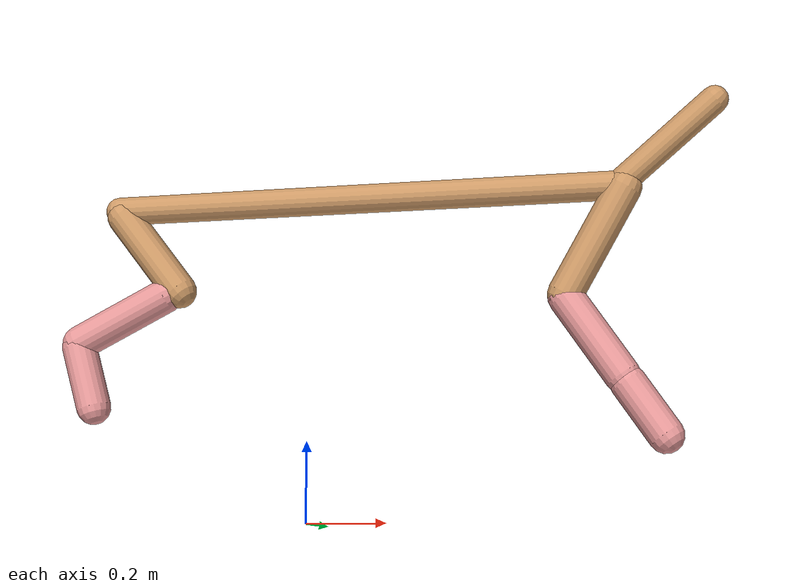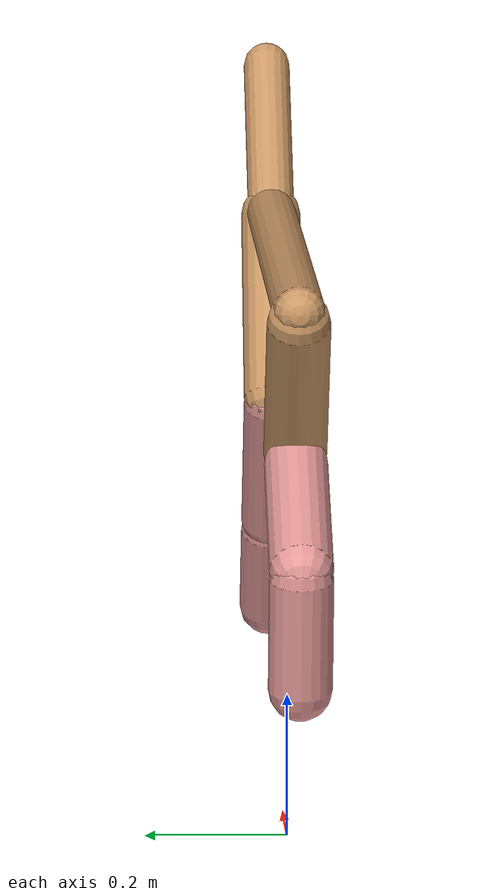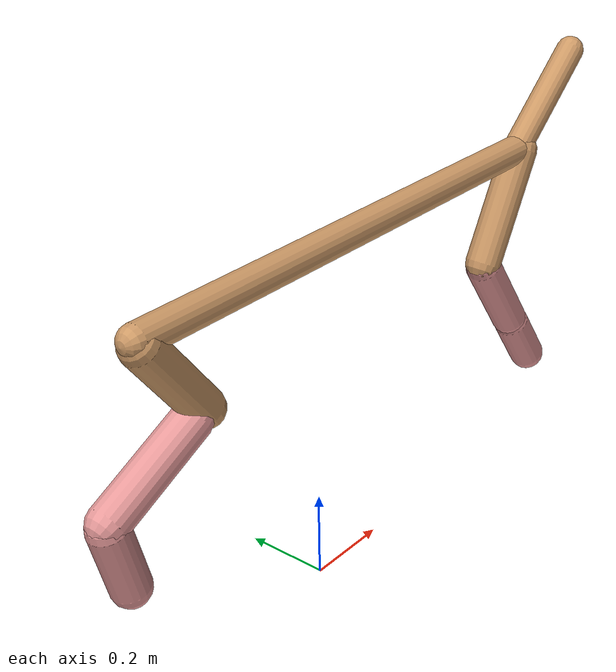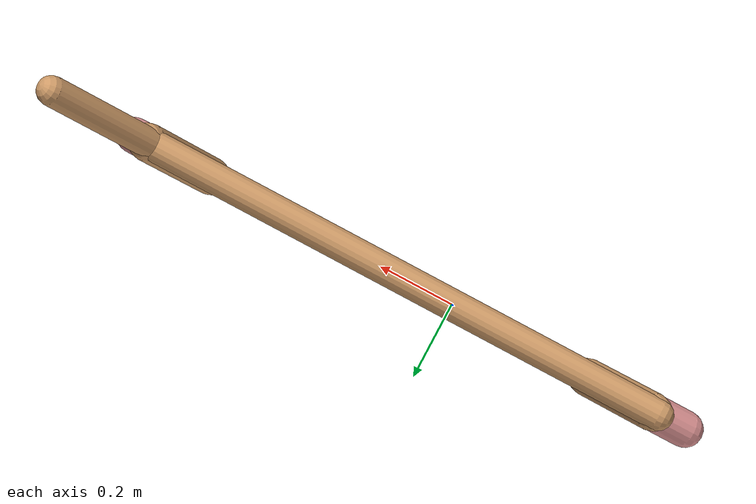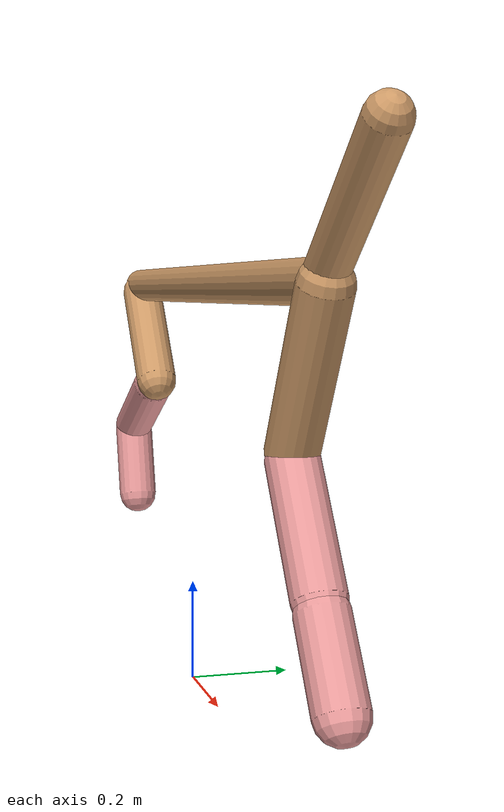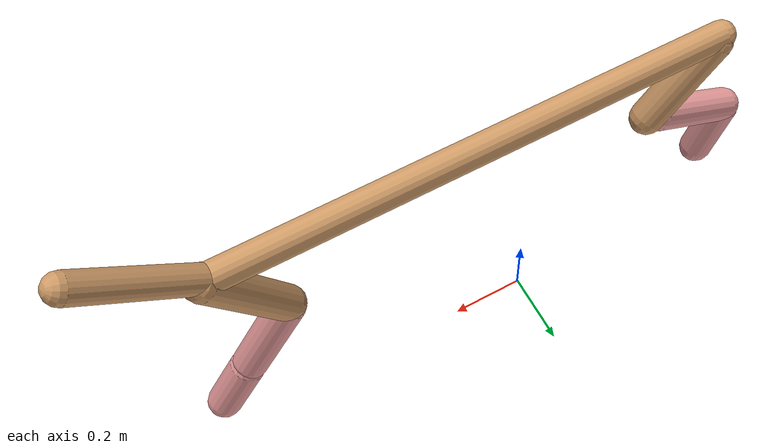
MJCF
<mujoco model="cheetah">
  <compiler angle="radian" coordinate="local" inertiafromgeom="true" settotalmass="14" />
  <default>
    <joint armature=".1" damping=".01" limited="true" solimplimit="0 .8 .03" solreflimit=".02 1" stiffness="8" />
    <geom conaffinity="0" condim="3" contype="1" friction="0.8 .1 .1" rgba="0.8 0.6 .4 1" solimp="0.0 0.8 0.01" solref="0.02 1" />
    <motor ctrllimited="true" ctrlrange="-1 1" />
  </default>
  <size nstack="300000" nuser_geom="1" />
  <option gravity="0 0 -9.81" timestep="0.01" />
  <worldbody>
    <body name="torso" pos="0.0 0.0 0.7992921291938618">
      <joint armature="0" axis="1 0 0" damping="0" limited="false" name="ignorex" pos="0 0 0" stiffness="0" type="slide" />
      <joint armature="0" axis="0 0 1" damping="0" limited="false" name="ignorez" pos="0 0 0" stiffness="0" type="slide" />
      <joint armature="0" axis="0 1 0" damping="0" limited="false" name="ignorey" pos="0 0 0" stiffness="0" type="hinge" />
      <geom fromto="-0.5 0.0 0.0 0.7889167560362249 0.0 0.0" name="torso" size="0.03561222806790655" type="capsule" />
      <geom axisangle="0 1 0 .87" name="head" pos="0.8889167560362249 0.0 0.1" size="0.03410785682807047 0.15" type="capsule" />

      <body name="bthigh" pos="-.5 0 0">
        <joint axis="0 1 0" damping="6" name="bthigh" pos="0 0 0" range="-.52 1.05" stiffness="240" type="hinge" />
        <geom axisangle="0 1 0 -3.8" name="bthigh" pos="0.0877648639781447 0.0 -0.1140943231715881" size="0.0435337622576455 0.12493288488987069" type="capsule" />
        <body name="bshin" pos="0.1355297279562894 0.0 -0.2181886463431762">
          <joint axis="0 1 0" damping="4.5" name="bshin" pos="0 0 0" range="-.785 .785" stiffness="180" type="hinge" />
          <geom axisangle="0 1 0 -2.03" name="bshin" pos="-0.12143251027645698 0.0 -0.06071625513822849" rgba="0.9 0.6 0.6 1" size="0.0435337622576455 0.1292409154033145" type="capsule" />
          <body name="bfoot" pos="-0.24286502055291395 0.0 -0.12143251027645698">
            <joint axis="0 1 0" damping="3" name="bfoot" pos="0 0 0" range="-.4 .785" stiffness="120" type="hinge" />
            <geom axisangle="0 1 0 -.27" name="bfoot" pos="0.02615622658969032 0.0 -0.08457179930666536" rgba="0.9 0.6 0.6 1" size="0.0435337622576455 0.08099097365274376" type="capsule" />
            <inertial mass="10" />
          </body>
        </body>
      </body>
      <body name="fthigh" pos="0.7889167560362249 0.0 0.0">
        <joint axis="0 1 0" damping="4.5" name="fthigh" pos="0 0 0" range="-1.5 0.8" stiffness="180" type="hinge" />
        <geom axisangle="0 1 0 .52" name="fthigh" pos="-0.07696029998549134 0.0 -0.13193194283227083" size="0.04368586194325587 0.14681365395688667" type="capsule" />
        <body name="fshin" pos="-0.15392059997098267 0.0 -0.26386388566454166">
          <joint axis="0 1 0" damping="3" name="fshin" pos="0 0 0" range="-1.2 1.1" stiffness="120" type="hinge" />
          <geom axisangle="0 1 0 -.6" name="fshin" pos="0.07144588702269307 0.0 -0.09892507433911349" rgba="0.9 0.6 0.6 1" size="0.04368586194325587 0.11700937834157883" type="capsule" />
          <body name="ffoot" pos="0.14289177404538614 0.0 -0.19785014867822698">
            <joint axis="0 1 0" damping="1.5" name="ffoot" pos="0 0 0" range="-3.1 -0.3" stiffness="60" type="hinge" />
            <geom axisangle="0 1 0 -.6" name="ffoot" pos="0.04893149381103379 0.0 -0.0761156570393859" rgba="0.9 0.6 0.6 1" size="0.04368586194325587 0.07727034418783509" type="capsule" />
            <inertial mass="10" />
          </body>
        </body>
      </body>
    </body>
  </worldbody>
  <actuator>
    <motor gear="120" joint="bthigh" name="bthigh" />
    <motor gear="90" joint="bshin" name="bshin" />
    <motor gear="60" joint="bfoot" name="bfoot" />
    <motor gear="120" joint="fthigh" name="fthigh" />
    <motor gear="60" joint="fshin" name="fshin" />
    <motor gear="30" joint="ffoot" name="ffoot" />
  </actuator>
</mujoco>
